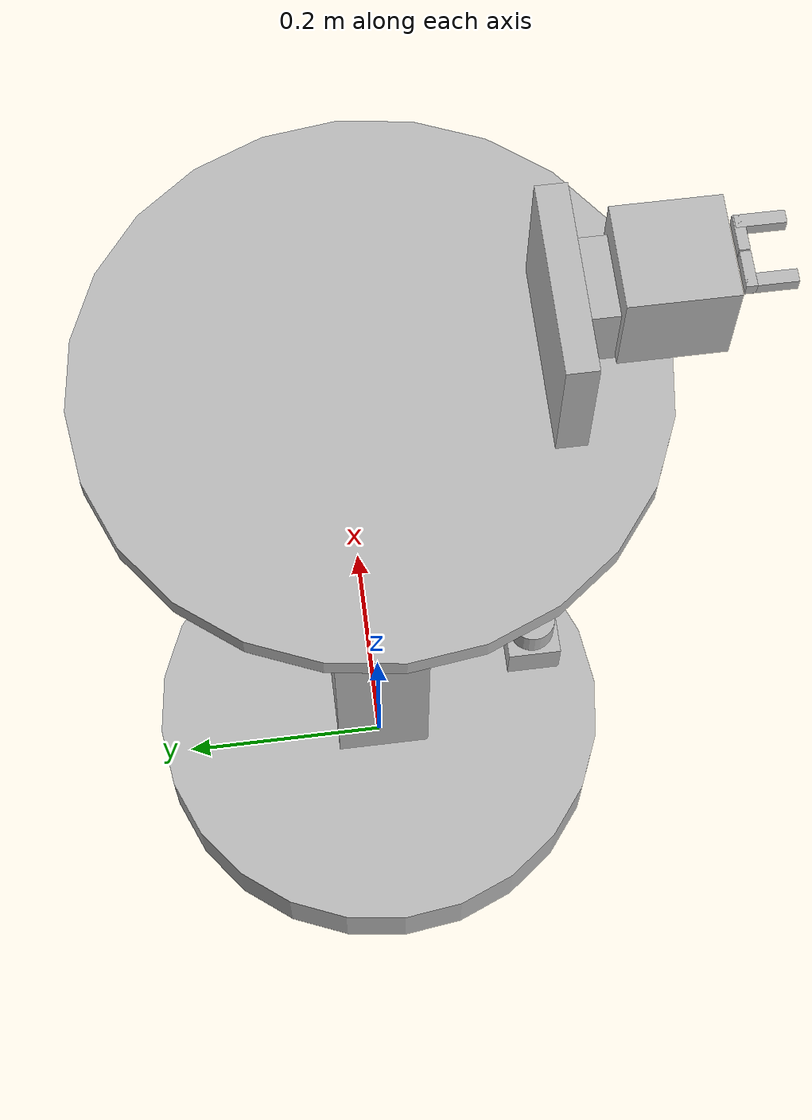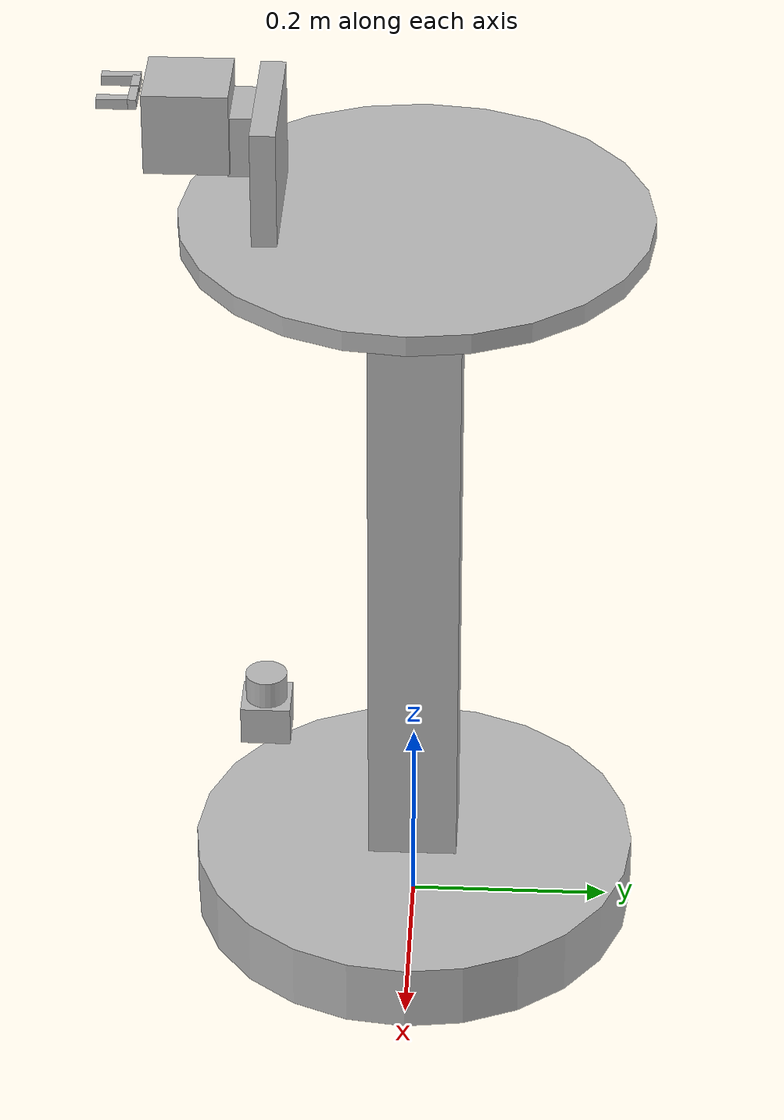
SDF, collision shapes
<?xml version="1.0" ?>
<sdf version="1.4">
  <model name="robotino_bbu2">
    <include>
      <name>robotino_bbu2</name>
      <uri>model://robotino_bbu</uri>
    </include>

    <include>
      <uri>model://robot_label2</uri>
      <pose>0 0.12 0.277 0.05 0 3.1415</pose>
    </include>

    <joint name="robotino_bbu2_gripper_adapter_joint" type="revolute">
      <parent>robotino_bbu2::robotino3::body</parent>
      <child>robot_label2::link</child>
      <axis>
        <limit>
          <lower>0</lower>
          <upper>0</upper>
        </limit>
        <xyz>0 0 1</xyz>
      </axis>
    </joint>

  </model>
</sdf>

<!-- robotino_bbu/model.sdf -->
<sdf version="1.4">

	<model name="robotino_bbu">

    <include>
      <uri>model://robotino3</uri>
      <pose>0 0 0 0 0 0</pose>
    </include>

    <include>
      <uri>model://robotino_gripper_adapter</uri>
      <pose>0 -0.15 0.805 0 0 3.1415</pose>
    </include>

    <joint name="robotino_gripper_adapter_joint" type="revolute">
      <parent>robotino3::body</parent>
      <child>robotino_gripper_adapter::plate</child>
      <axis>
        <limit>
          <lower>0</lower>
          <upper>0</upper>
        </limit>
        <xyz>0 0 1</xyz>
      </axis>
    </joint>

    <include>
      <uri>model://robotino_gripper</uri>
      <pose>0 -0.255 0.925 0 0 3.1415</pose>
    </include>

    <joint name="robotino_gripper_joint" type="revolute">
      <parent>robotino_gripper_adapter::block</parent>
      <child>robotino_gripper::body</child>
      <axis>
        <limit>
          <lower>0</lower>
          <upper>0</upper>
        </limit>
        <xyz>0 0 1</xyz>
      </axis>
    </joint>

	<include>
      <uri>model://hokuyo_noisy</uri>
      <pose>0.0 -0.15 0.235 0 0 -1.570796</pose>
    </include>

    <joint name="hokuyo_joint" type="revolute">
      <parent>robotino3::body</parent>
      <child>hokuyo::laser_link</child>
      <axis>
        <xyz>0 0 1</xyz>
        <limit>
          <upper>0</upper>
          <lower>0</lower>
        </limit>
      </axis>
    </joint>

    <plugin name="Odometry" filename="libodometry.so"/>

  </model>
</sdf>

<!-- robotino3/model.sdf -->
<sdf version="1.5">
  <model name="robotino3">
    <static>false</static>
    <link name="body">
      <pose>0 0 0.001 0 0 0</pose>
      <gravity>true</gravity>
      <inertial>
        <mass>30</mass>
        <pose>0 0 0.075 0 0 0</pose>
        <inertia>
	  <!-- according to http://en.wikipedia.org/wiki/List_of_moments_of_inertia for a solid cylinder of radius r=0.225, height h=0.15, mass m=30 -->
          <ixx>0.4359375</ixx>
          <ixy>0.0</ixy>
          <ixz>0.0</ixz>
          <iyy>0.4359375</iyy>
          <iyz>0.0</iyz>
          <izz>0.759375</izz>
        </inertia>
      </inertial>
      <visual name="body-visual">
        <pose>0.01 0 0.00 0 0 1.570795</pose>
        <geometry>
          <mesh>
            <uri>model://robotino3/meshes/robotino3.dae</uri>
            <scale>0.001 0.001 0.001</scale>
          </mesh>
        </geometry>
        <cast_shadows>false</cast_shadows>
      </visual>
      <collision name="body-collision">
        <pose>0 0 0.035 0 0 0</pose>
        <geometry>
          <cylinder>
            <length>0.07</length>
            <radius>0.225</radius>
          </cylinder>
        </geometry>
        <surface>
          <friction>
            <ode>
              <mu>0.2</mu>
              <mu2>0.2</mu2>
              <slip1>0.8</slip1>
              <slip2>0.8</slip2>
            </ode>
          </friction>
        </surface>
      </collision>
      <collision name="tower">
        <pose>0.00 0.00 0.43 0 0 0</pose>
        <geometry>
          <box>
            <size>0.09 0.09 0.70</size>
          </box>
        </geometry>
      </collision>
      <collision name="tower_plate">
        <pose>0 0 0.79 0 0 0</pose>
        <geometry>
          <cylinder>
            <length>0.02</length>
            <radius>0.225</radius>
          </cylinder>
        </geometry>
      </collision>
    </link>

  </model>
</sdf>

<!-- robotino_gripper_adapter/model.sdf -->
<sdf version="1.5">
  <model name="robotino_gripper_adapter">
    <link name="plate">
        <pose>0.0 0 0 1.570796 0 0</pose>
        <inertial>
            <inertia>
                <ixx>0.01</ixx>
                <ixy>0</ixy>
                <ixz>0</ixz>
                <iyy>0.01</iyy>
                <iyz>0</iyz>
                <izz>0.01</izz>
            </inertia>
            <mass>0.5</mass>
        </inertial>
      <visual name="visual">
        <pose>0 0 0 0 0 0</pose>
        <geometry>
          <mesh>
            <uri>model://robotino_gripper_adapter/meshes/robotino_gripper_plate.dae</uri>
          </mesh>
        </geometry>
        <cast_shadows>false</cast_shadows>
      </visual>
      <collision name="collision">
        <pose>0.0 0.0575 0.012 0 0 0</pose>
        <geometry>
		    <box>
                 <size>0.15 0.115 0.024</size>
		    </box>
        </geometry>
      </collision>
    </link>

    <link name="block">
        <pose>0.0 0.024 0.08 1.570796 0 3.1415</pose>
        <inertial>
            <inertia>
                <ixx>0.01</ixx>
                <ixy>0</ixy>
                <ixz>0</ixz>
                <iyy>0.01</iyy>
                <iyz>0</iyz>
                <izz>0.01</izz>
            </inertia>
            <mass>0.5</mass>
        </inertial>
      <visual name="visual">
        <pose>0 0 0 0 0 0</pose>
        <geometry>
          <mesh>
            <uri>model://robotino_gripper_adapter/meshes/robotino_gripper_block.dae</uri>
          </mesh>
        </geometry>
        <cast_shadows>false</cast_shadows>
      </visual>
      <collision name="collision">
        <pose>0.0 0 -0.012 0 0 0</pose>
        <geometry>
		    <box>
                 <size>0.065 0.06 0.024</size>
		    </box>
        </geometry>
      </collision>
    </link>

    <joint name="plate_block_joint" type="revolute">
        <child>block</child>
        <parent>plate</parent>
        <axis>
            <limit>
                <lower>0</lower>
                <upper>0</upper>
            </limit>
            <xyz>1 0 0</xyz>
        </axis>
    </joint>

  </model>
</sdf>

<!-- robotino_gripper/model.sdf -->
<sdf version="1.5">
  <model name="robotino_gripper">
	<static>false</static>
    <link name="body">
        <pose>0.0 -0.0435 -0.025 0 0 0</pose>
        <inertial>
            <inertia>
                <ixx>0.01</ixx>
                <ixy>0</ixy>
                <ixz>0</ixz>
                <iyy>0.01</iyy>
                <iyz>0</iyz>
                <izz>0.01</izz>
            </inertia>
            <mass>0.5</mass>
        </inertial>
      <visual name="visual">
        <pose>0 0.04 -0.175 0 0 0</pose>
        <geometry>
          <mesh>
            <uri>model://robotino_gripper/meshes/robotino_gripper_base.dae</uri>
          </mesh>
        </geometry>
        <cast_shadows>false</cast_shadows>
      </visual>
      <collision name="collision">

        <geometry>
		    <box>
                 <size>0.08 0.08 0.08</size>
		    </box>
        </geometry>
      </collision>
    </link>

    <link name="finger-left">
        <pose>-0.0005 0.0 0.0 0 0 0</pose>
        <inertial>
            <inertia>
                <ixx>0.01</ixx>
                <ixy>0</ixy>
                <ixz>0</ixz>
                <iyy>0.01</iyy>
                <iyz>0</iyz>
                <izz>0.01</izz>
            </inertia>
            <mass>0.1</mass>
        </inertial>
      <visual name="visual">
        <pose>0.013 -0.004 -0.20 0 0 0</pose>
        <geometry>
          <mesh>
            <uri>model://robotino_gripper/meshes/robotino_gripper_finger.dae</uri>
          </mesh>
        </geometry>
        <cast_shadows>false</cast_shadows>
      </visual>

        <collision name="collision">
        	<pose>-0.014 0.006 0 0 0 0</pose>
            <geometry>
                <box>
                    <size>0.028 0.008 0.01</size>
                </box>
            </geometry>
        </collision>
        <collision name="collision">
        	<pose>-0.023 0.021 0 0 0 0</pose>
            <geometry>
                <box>
                    <size>0.01 0.036 0.01</size>
                </box>
            </geometry>
        </collision>
    </link>

    <link name="finger-right">
        <pose>0.0005 0.0 0.0 0 3.1415 0</pose>
        <inertial>
            <inertia>
                <ixx>0.01</ixx>
                <ixy>0</ixy>
                <ixz>0</ixz>
                <iyy>0.01</iyy>
                <iyz>0</iyz>
                <izz>0.01</izz>
            </inertia>
            <mass>0.1</mass>
        </inertial>
      <visual name="visual">
        <pose>0.013 -0.004 -0.20 0 0 0</pose>
        <geometry>
          <mesh>
            <uri>model://robotino_gripper/meshes/robotino_gripper_finger.dae</uri>
          </mesh>
        </geometry>
        <cast_shadows>false</cast_shadows>
      </visual>

        <collision name="collision">
        	<pose>-0.014 0.006 0 0 0 0</pose>
            <geometry>
                <box>
                    <size>0.028 0.008 0.01</size>
                </box>
            </geometry>
        </collision>
        <collision name="collision">
        	<pose>-0.023 0.021 0 0 0 0</pose>
            <geometry>
                <box>
                    <size>0.01 0.036 0.01</size>
                </box>
            </geometry>
        </collision>
    </link>

    <joint name="left_finger_move" type="prismatic">
        <child>finger-left</child>
        <parent>body</parent>
        <axis>
            <limit>
                <lower>0</lower>
                <upper>0.004</upper>
            </limit>
            <xyz>1 0 0</xyz>
        </axis>
    </joint>

    <joint name="right_finger_move" type="prismatic">
        <child>finger-right</child>
        <parent>body</parent>
        <axis>
            <limit>
                <lower>0</lower>
                <upper>0.004</upper>
            </limit>
            <xyz>1 0 0</xyz>
        </axis>
    </joint>

  </model>
</sdf>

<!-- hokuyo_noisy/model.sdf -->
<sdf version="1.4">
  <model name="hokuyo">
    <pose>0 0 0.035 0 0 0</pose>
    <link name="laser_link">
      <inertial>
        <mass>0.1</mass>
      </inertial>
      <visual name="visual">
        <geometry>
          <mesh>
            <uri>model://hokuyo/meshes/hokuyo.dae</uri>
          </mesh>
        </geometry>
      </visual>
      <collision name="collision-base">
        <pose>0 0 -0.0145 0 0 0</pose>
        <geometry>
          <box>
            <size>0.05 0.05 0.041</size>
          </box>
        </geometry>
      </collision>
      <collision name="collision-top">
        <pose>0 0 0.0205 0 0 0</pose>
        <geometry>
          <cylinder>
            <radius>0.021</radius>
            <length>0.029</length>
          </cylinder>
        </geometry>
      </collision>
      <sensor name="laser" type="ray">
        <pose>0.01 0 0.0175 0 -0 0</pose>
        <visualize>true</visualize>
        <ray>
          <scan>
            <horizontal>
              <samples>640</samples>
              <resolution>1</resolution>
              <min_angle>-2.26889</min_angle>
              <max_angle>2.268899</max_angle>
            </horizontal>
          </scan>
          <range>
            <min>0.08</min>
            <max>10.0</max>
            <resolution>0.01</resolution>
          </range>
          <noise>
            <type>gaussian</type>
            <mean>0.0</mean>
            <stddev>0.01</stddev>
          </noise>
        </ray>
        <always_on>1</always_on>
        <update_rate>30</update_rate>
      </sensor>
    </link>
  </model>
</sdf>

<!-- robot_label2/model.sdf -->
<sdf version="1.5">
  <model name="robot_label2">
    <static>true</static>
    <link name="link">
      <pose>0 0 0.005 0 0 0 </pose>
      <gravity>false</gravity>
      <visual name="panel">
        <cast_shadows>false</cast_shadows>
        <geometry>
          <plane>
            <normal>0 0 1</normal>
            <size>0.08 0.08</size>
          </plane>
        </geometry>
	<material>
          <script>
            <uri>model://robot_label1/materials/scripts</uri>
            <uri>model://robot_label1/materials/textures</uri>
            <name>robot_label/robotino2</name>
          </script>
	</material>
      </visual>
    </link>
  </model>
</sdf>
